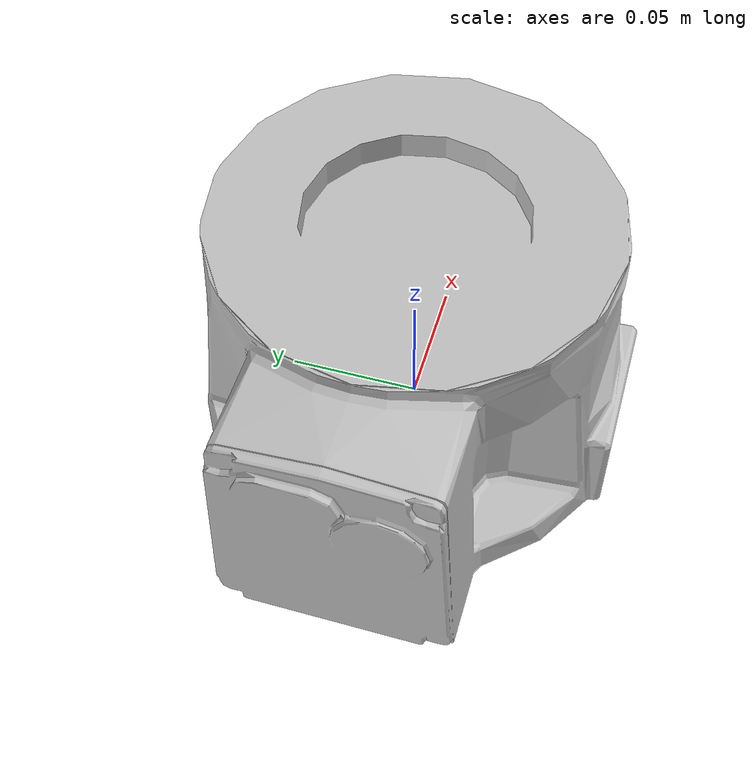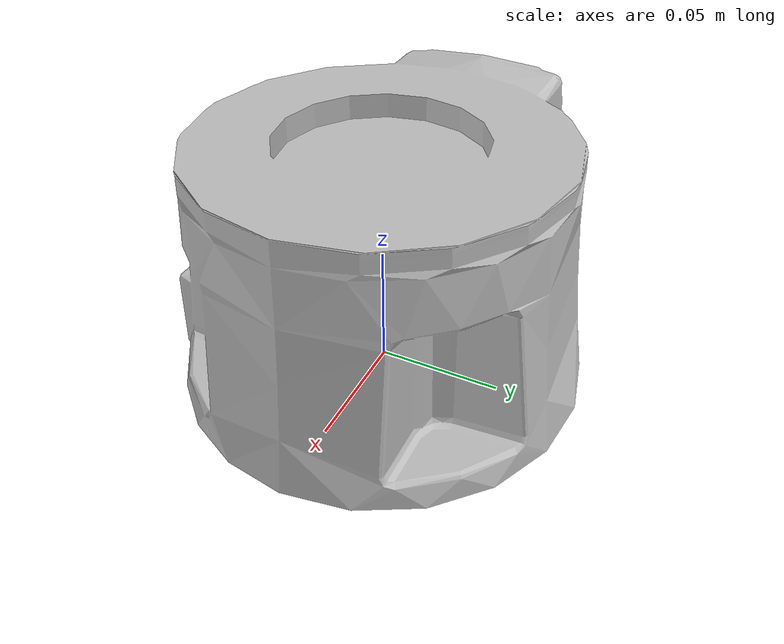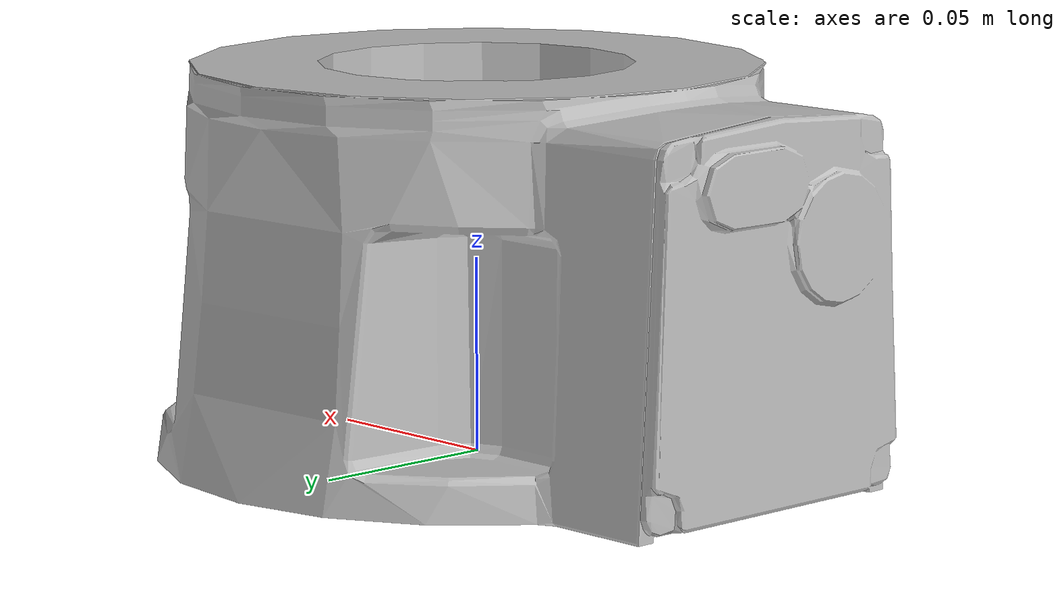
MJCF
<mujoco model="base_link">
  <default>
    <default class="visual">
      <geom group="2" type="mesh" contype="0" conaffinity="0"/>
    </default>
    <default class="collision">
      <geom group="3" type="mesh"/>
    </default>
  </default>
  <asset>
    <material name="material_m0_0" specular="0.20000000000000004" shininess="1.0" rgba="0.75294118 0.75294118 0.75294118 1.0"/>
    <mesh file="base_link.obj"/>
  </asset>
  <worldbody>
    <body name="base_link">
      <geom material="material_m0_0" mesh="base_link" class="visual"/>
      <geom mesh="base_link" class="collision"/>
    </body>
  </worldbody>
</mujoco>
